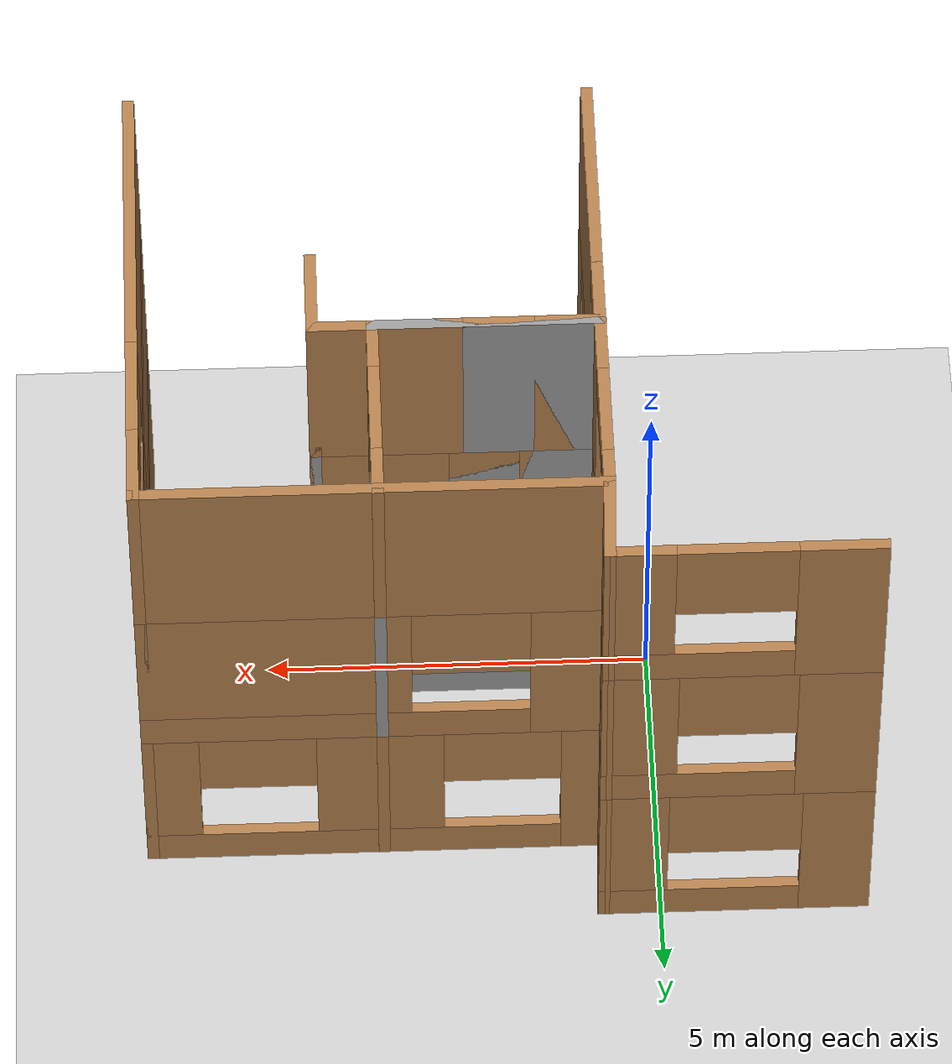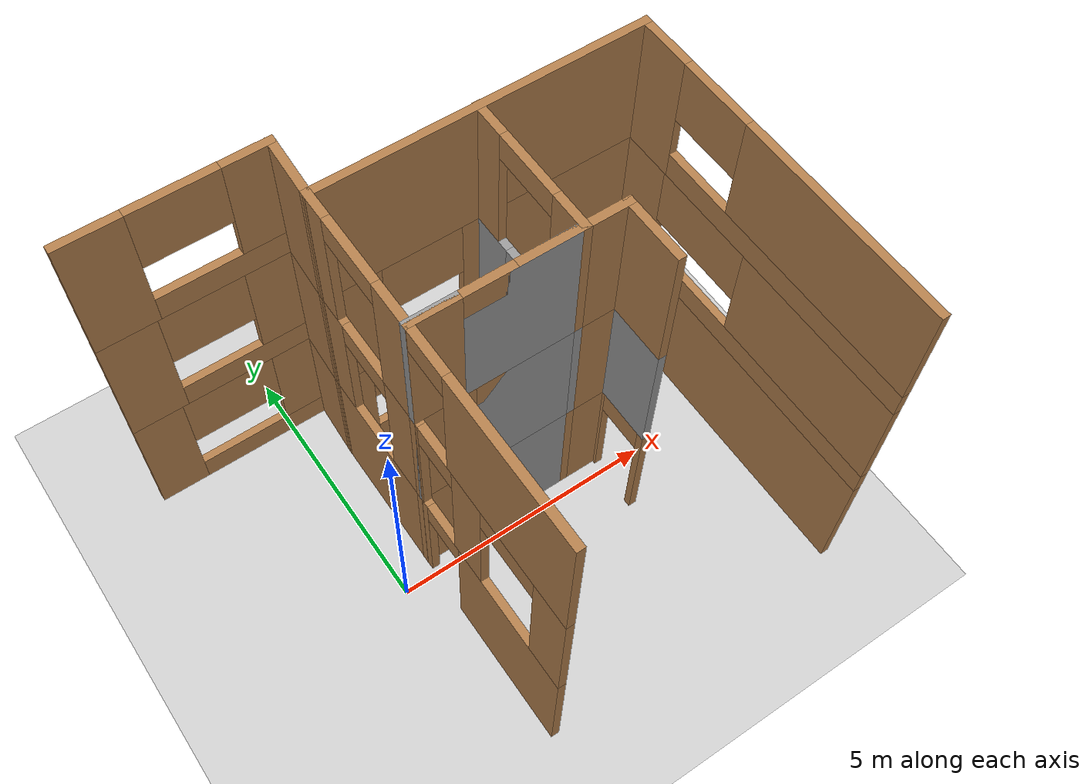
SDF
<sdf version="1.7">
 <world name="default">
  <model name="ground_plane">
   <static>1</static>
   <link name="link">
    <collision name="collision">
     <geometry><plane><normal>0 0 1</normal><size>100 100</size></plane></geometry>
     <surface>
      <contact><collide_bitmask>65535</collide_bitmask></contact>
      <friction><ode><mu>100</mu><mu2>50</mu2></ode></friction>
     </surface>
    </collision>
    <visual name="visual">
     <cast_shadows>0</cast_shadows>
     <geometry><plane><normal>0 0 1</normal><size>100 100</size></plane></geometry>
     <material>
      <script><uri>file://media/materials/scripts/gazebo.material</uri><name>Gazebo/Grey</name></script>
     </material>
    </visual>
   </link>
  </model>
  <model name="three_level_house">
   <pose>0.012851 -0.612237 0 0 -0 0</pose>
   <link name="Wall_0">
    <pose>-0.944295 4.64938 0 0 -0 0</pose>
    <visual name="Wall_0_Visual_0">
     <pose>-1.29181 0 1.25 0 -0 0</pose>
     <geometry><box><size>0.916373 0.15 2.5</size></box></geometry>
     <material>
      <script><uri>file://media/materials/scripts/gazebo.material</uri><name>Gazebo/Wood</name></script>
      <ambient>1 1 1 1</ambient>
     </material>
     <meta><layer>0</layer></meta>
    </visual>
    <collision name="Wall_0_Collision_0">
     <geometry><box><size>0.916373 0.15 2.5</size></box></geometry>
     <pose>-1.29181 0 1.25 0 -0 0</pose>
    </collision>
    <visual name="Wall_0_Visual_1">
     <pose>0.458187 0 0.25 0 -0 0</pose>
     <geometry><box><size>2.58363 0.15 0.5</size></box></geometry>
     <material>
      <script><uri>file://media/materials/scripts/gazebo.material</uri><name>Gazebo/Wood</name></script>
      <ambient>1 1 1 1</ambient>
     </material>
     <meta><layer>0</layer></meta>
    </visual>
    <collision name="Wall_0_Collision_1">
     <geometry><box><size>2.58363 0.15 0.5</size></box></geometry>
     <pose>0.458187 0 0.25 0 -0 0</pose>
    </collision>
    <visual name="Wall_0_Visual_2">
     <pose>1.30819 0 1.5 0 -0 0</pose>
     <geometry><box><size>0.883627 0.15 2</size></box></geometry>
     <material>
      <script><uri>file://media/materials/scripts/gazebo.material</uri><name>Gazebo/Wood</name></script>
      <ambient>1 1 1 1</ambient>
     </material>
     <meta><layer>0</layer></meta>
    </visual>
    <collision name="Wall_0_Collision_2">
     <geometry><box><size>0.883627 0.15 2</size></box></geometry>
     <pose>1.30819 0 1.5 0 -0 0</pose>
    </collision>
    <visual name="Wall_0_Visual_3">
     <pose>0.016373 0 1.9 0 -0 0</pose>
     <geometry><box><size>1.7 0.15 1.2</size></box></geometry>
     <material>
      <script><uri>file://media/materials/scripts/gazebo.material</uri><name>Gazebo/Wood</name></script>
      <ambient>1 1 1 1</ambient>
     </material>
     <meta><layer>0</layer></meta>
    </visual>
    <collision name="Wall_0_Collision_3">
     <geometry><box><size>1.7 0.15 1.2</size></box></geometry>
     <pose>0.016373 0 1.9 0 -0 0</pose>
    </collision>
   </link>
   <link name="Wall_1">
    <collision name="Wall_1_Collision">
     <geometry><box><size>1.25 0.15 2.5</size></box></geometry>
     <pose>0 0 1.25 0 -0 0</pose>
    </collision>
    <visual name="Wall_1_Visual">
     <pose>0 0 1.25 0 -0 0</pose>
     <geometry><box><size>1.25 0.15 2.5</size></box></geometry>
     <material>
      <script><uri>file://media/materials/scripts/gazebo.material</uri><name>Gazebo/Wood</name></script>
      <ambient>1 1 1 1</ambient>
     </material>
     <meta><layer>0</layer></meta>
    </visual>
    <pose>0.707575 4.09938 0 0 -0 -1.61283</pose>
   </link>
   <link name="Wall_10">
    <pose>0.684444 0.374383 0 0 -0 1.5708</pose>
    <visual name="Wall_10_Visual_0">
     <pose>-1.89481 0 1.25 0 -0 0</pose>
     <geometry><box><size>2.71039 0.15 2.5</size></box></geometry>
     <material>
      <script><uri>file://media/materials/scripts/gazebo.material</uri><name>Gazebo/Wood</name></script>
      <ambient>1 1 1 1</ambient>
     </material>
     <meta><layer>0</layer></meta>
    </visual>
    <collision name="Wall_10_Collision_0">
     <geometry><box><size>2.71039 0.15 2.5</size></box></geometry>
     <pose>-1.89481 0 1.25 0 -0 0</pose>
    </collision>
    <visual name="Wall_10_Visual_1">
     <pose>1.8052 0 1.25 0 -0 0</pose>
     <geometry><box><size>2.88961 0.15 2.5</size></box></geometry>
     <material>
      <script><uri>file://media/materials/scripts/gazebo.material</uri><name>Gazebo/Wood</name></script>
      <ambient>1 1 1 1</ambient>
     </material>
     <meta><layer>0</layer></meta>
    </visual>
    <collision name="Wall_10_Collision_1">
     <geometry><box><size>2.88961 0.15 2.5</size></box></geometry>
     <pose>1.8052 0 1.25 0 -0 0</pose>
    </collision>
    <visual name="Wall_10_Visual_2">
     <pose>-0.08961 0 2.25 0 -0 0</pose>
     <geometry><box><size>0.9 0.15 0.5</size></box></geometry>
     <material>
      <script><uri>file://media/materials/scripts/gazebo.material</uri><name>Gazebo/Wood</name></script>
      <ambient>1 1 1 1</ambient>
     </material>
     <meta><layer>0</layer></meta>
    </visual>
    <collision name="Wall_10_Collision_2">
     <geometry><box><size>0.9 0.15 0.5</size></box></geometry>
     <pose>-0.08961 0 2.25 0 -0 0</pose>
    </collision>
   </link>
   <link name="Wall_113">
    <pose>-0.944295 4.64938 5 0 -0 0</pose>
    <visual name="Wall_113_Visual_0">
     <pose>-1.1952 0 1.25 0 -0 0</pose>
     <geometry><box><size>1.1096 0.15 2.5</size></box></geometry>
     <material>
      <script><uri>file://media/materials/scripts/gazebo.material</uri><name>Gazebo/Wood</name></script>
      <ambient>1 1 1 1</ambient>
     </material>
     <meta><layer>2</layer></meta>
    </visual>
    <collision name="Wall_113_Collision_0">
     <geometry><box><size>1.1096 0.15 2.5</size></box></geometry>
     <pose>-1.1952 0 1.25 0 -0 0</pose>
    </collision>
    <visual name="Wall_113_Visual_1">
     <pose>0.554801 0 0.25 0 -0 0</pose>
     <geometry><box><size>2.3904 0.15 0.5</size></box></geometry>
     <material>
      <script><uri>file://media/materials/scripts/gazebo.material</uri><name>Gazebo/Wood</name></script>
      <ambient>1 1 1 1</ambient>
     </material>
     <meta><layer>2</layer></meta>
    </visual>
    <collision name="Wall_113_Collision_1">
     <geometry><box><size>2.3904 0.15 0.5</size></box></geometry>
     <pose>0.554801 0 0.25 0 -0 0</pose>
    </collision>
    <visual name="Wall_113_Visual_2">
     <pose>1.3048 0 1.5 0 -0 0</pose>
     <geometry><box><size>0.890397 0.15 2</size></box></geometry>
     <material>
      <script><uri>file://media/materials/scripts/gazebo.material</uri><name>Gazebo/Wood</name></script>
      <ambient>1 1 1 1</ambient>
     </material>
     <meta><layer>2</layer></meta>
    </visual>
    <collision name="Wall_113_Collision_2">
     <geometry><box><size>0.890397 0.15 2</size></box></geometry>
     <pose>1.3048 0 1.5 0 -0 0</pose>
    </collision>
    <visual name="Wall_113_Visual_3">
     <pose>0.109603 0 1.9 0 -0 0</pose>
     <geometry><box><size>1.5 0.15 1.2</size></box></geometry>
     <material>
      <script><uri>file://media/materials/scripts/gazebo.material</uri><name>Gazebo/Wood</name></script>
      <ambient>1 1 1 1</ambient>
     </material>
     <meta><layer>2</layer></meta>
    </visual>
    <collision name="Wall_113_Collision_3">
     <geometry><box><size>1.5 0.15 1.2</size></box></geometry>
     <pose>0.109603 0 1.9 0 -0 0</pose>
    </collision>
   </link>
   <link name="Wall_114">
    <collision name="Wall_114_Collision">
     <geometry><box><size>1.25097 0.15 2.5</size></box></geometry>
     <pose>0 0 1.25 0 -0 0</pose>
    </collision>
    <visual name="Wall_114_Visual">
     <pose>0 0 1.25 0 -0 0</pose>
     <geometry><box><size>1.25097 0.15 2.5</size></box></geometry>
     <material>
      <script><uri>file://media/materials/scripts/gazebo.material</uri><name>Gazebo/Wood</name></script>
      <ambient>1 1 1 1</ambient>
     </material>
     <meta><layer>2</layer></meta>
    </visual>
    <pose>0.707575 4.09938 5 0 -0 -1.61283</pose>
   </link>
   <link name="Wall_115">
    <collision name="Wall_115_Collision">
     <geometry><box><size>6 0.15 2.5</size></box></geometry>
     <pose>0 0 1.25 0 -0 0</pose>
    </collision>
    <visual name="Wall_115_Visual">
     <pose>0 0 1.25 0 -0 0</pose>
     <geometry><box><size>6 0.15 2.5</size></box></geometry>
     <material>
      <script><uri>file://media/materials/scripts/gazebo.material</uri><name>Gazebo/Wood</name></script>
      <ambient>1 1 1 1</ambient>
     </material>
     <meta><layer>2</layer></meta>
    </visual>
    <pose>3.60944 3.54938 5 0 -0 0</pose>
   </link>
   <link name="Wall_116">
    <pose>6.53444 0.374383 5 0 -0 -1.5708</pose>
    <visual name="Wall_116_Visual_0">
     <pose>-2.69584 0 1.25 0 -0 0</pose>
     <geometry><box><size>1.10832 0.15 2.5</size></box></geometry>
     <material>
      <script><uri>file://media/materials/scripts/gazebo.material</uri><name>Gazebo/Wood</name></script>
      <ambient>1 1 1 1</ambient>
     </material>
     <meta><layer>2</layer></meta>
    </visual>
    <collision name="Wall_116_Collision_0">
     <geometry><box><size>1.10832 0.15 2.5</size></box></geometry>
     <pose>-2.69584 0 1.25 0 -0 0</pose>
    </collision>
    <visual name="Wall_116_Visual_1">
     <pose>0.554159 0 0.25 0 -0 0</pose>
     <geometry><box><size>5.39168 0.15 0.5</size></box></geometry>
     <material>
      <script><uri>file://media/materials/scripts/gazebo.material</uri><name>Gazebo/Wood</name></script>
      <ambient>1 1 1 1</ambient>
     </material>
     <meta><layer>2</layer></meta>
    </visual>
    <collision name="Wall_116_Collision_1">
     <geometry><box><size>5.39168 0.15 0.5</size></box></geometry>
     <pose>0.554159 0 0.25 0 -0 0</pose>
    </collision>
    <visual name="Wall_116_Visual_2">
     <pose>1.25416 0 1.5 0 -0 0</pose>
     <geometry><box><size>3.99168 0.15 2</size></box></geometry>
     <material>
      <script><uri>file://media/materials/scripts/gazebo.material</uri><name>Gazebo/Wood</name></script>
      <ambient>1 1 1 1</ambient>
     </material>
     <meta><layer>2</layer></meta>
    </visual>
    <collision name="Wall_116_Collision_2">
     <geometry><box><size>3.99168 0.15 2</size></box></geometry>
     <pose>1.25416 0 1.5 0 -0 0</pose>
    </collision>
    <visual name="Wall_116_Visual_3">
     <pose>-1.44168 0 1.9 0 -0 0</pose>
     <geometry><box><size>1.4 0.15 1.2</size></box></geometry>
     <material>
      <script><uri>file://media/materials/scripts/gazebo.material</uri><name>Gazebo/Wood</name></script>
      <ambient>1 1 1 1</ambient>
     </material>
     <meta><layer>2</layer></meta>
    </visual>
    <collision name="Wall_116_Collision_3">
     <geometry><box><size>1.4 0.15 1.2</size></box></geometry>
     <pose>-1.44168 0 1.9 0 -0 0</pose>
    </collision>
   </link>
   <link name="Wall_118">
    <pose>0.684444 0.374383 5 0 -0 1.5708</pose>
    <visual name="Wall_118_Visual_0">
     <pose>-1.79676 0 1.25 0 -0 0</pose>
     <geometry><box><size>2.90647 0.15 2.5</size></box></geometry>
     <material>
      <script><uri>file://media/materials/scripts/gazebo.material</uri><name>Gazebo/Wood</name></script>
      <ambient>1 1 1 1</ambient>
     </material>
     <meta><layer>2</layer></meta>
    </visual>
    <collision name="Wall_118_Collision_0">
     <geometry><box><size>2.90647 0.15 2.5</size></box></geometry>
     <pose>-1.79676 0 1.25 0 -0 0</pose>
    </collision>
    <visual name="Wall_118_Visual_1">
     <pose>0.96834 0 1.25 0 -0 0</pose>
     <geometry><box><size>0.823741 0.15 2.5</size></box></geometry>
     <material>
      <script><uri>file://media/materials/scripts/gazebo.material</uri><name>Gazebo/Wood</name></script>
      <ambient>1 1 1 1</ambient>
     </material>
     <meta><layer>2</layer></meta>
    </visual>
    <collision name="Wall_118_Collision_1">
     <geometry><box><size>0.823741 0.15 2.5</size></box></geometry>
     <pose>0.96834 0 1.25 0 -0 0</pose>
    </collision>
    <visual name="Wall_118_Visual_2">
     <pose>2.9651 0 1.25 0 -0 0</pose>
     <geometry><box><size>0.569789 0.15 2.5</size></box></geometry>
     <material>
      <script><uri>file://media/materials/scripts/gazebo.material</uri><name>Gazebo/Wood</name></script>
      <ambient>1 1 1 1</ambient>
     </material>
     <meta><layer>2</layer></meta>
    </visual>
    <collision name="Wall_118_Collision_2">
     <geometry><box><size>0.569789 0.15 2.5</size></box></geometry>
     <pose>2.9651 0 1.25 0 -0 0</pose>
    </collision>
    <visual name="Wall_118_Visual_3">
     <pose>0.106469 0 2.25 0 -0 0</pose>
     <geometry><box><size>0.9 0.15 0.5</size></box></geometry>
     <material>
      <script><uri>file://media/materials/scripts/gazebo.material</uri><name>Gazebo/Wood</name></script>
      <ambient>1 1 1 1</ambient>
     </material>
     <meta><layer>2</layer></meta>
    </visual>
    <collision name="Wall_118_Collision_3">
     <geometry><box><size>0.9 0.15 0.5</size></box></geometry>
     <pose>0.106469 0 2.25 0 -0 0</pose>
    </collision>
    <visual name="Wall_118_Visual_4">
     <pose>2.03021 0 2.25 0 -0 0</pose>
     <geometry><box><size>1.3 0.15 0.5</size></box></geometry>
     <material>
      <script><uri>file://media/materials/scripts/gazebo.material</uri><name>Gazebo/Wood</name></script>
      <ambient>1 1 1 1</ambient>
     </material>
     <meta><layer>2</layer></meta>
    </visual>
    <collision name="Wall_118_Collision_4">
     <geometry><box><size>1.3 0.15 0.5</size></box></geometry>
     <pose>2.03021 0 2.25 0 -0 0</pose>
    </collision>
   </link>
   <link name="Wall_131">
    <pose>3.53098 2.25753 5 0 -0 -1.5708</pose>
    <visual name="Wall_131_Visual_0">
     <pose>-1.01915 0 1.25 0 -0 0</pose>
     <geometry><box><size>0.711698 0.15 2.5</size></box></geometry>
     <material>
      <script><uri>file://media/materials/scripts/gazebo.material</uri><name>Gazebo/Wood</name></script>
      <ambient>1 1 1 1</ambient>
     </material>
     <meta><layer>2</layer></meta>
    </visual>
    <collision name="Wall_131_Collision_0">
     <geometry><box><size>0.711698 0.15 2.5</size></box></geometry>
     <pose>-1.01915 0 1.25 0 -0 0</pose>
    </collision>
    <visual name="Wall_131_Visual_1">
     <pose>1.00585 0 1.25 0 -0 0</pose>
     <geometry><box><size>0.738302 0.15 2.5</size></box></geometry>
     <material>
      <script><uri>file://media/materials/scripts/gazebo.material</uri><name>Gazebo/Wood</name></script>
      <ambient>1 1 1 1</ambient>
     </material>
     <meta><layer>2</layer></meta>
    </visual>
    <collision name="Wall_131_Collision_1">
     <geometry><box><size>0.738302 0.15 2.5</size></box></geometry>
     <pose>1.00585 0 1.25 0 -0 0</pose>
    </collision>
    <visual name="Wall_131_Visual_2">
     <pose>-0.013302 0 2.25 0 -0 0</pose>
     <geometry><box><size>1.3 0.15 0.5</size></box></geometry>
     <material>
      <script><uri>file://media/materials/scripts/gazebo.material</uri><name>Gazebo/Wood</name></script>
      <ambient>1 1 1 1</ambient>
     </material>
     <meta><layer>2</layer></meta>
    </visual>
    <collision name="Wall_131_Collision_2">
     <geometry><box><size>1.3 0.15 0.5</size></box></geometry>
     <pose>-0.013302 0 2.25 0 -0 0</pose>
    </collision>
   </link>
   <link name="Wall_132">
    <collision name="Wall_132_Collision">
     <geometry><box><size>3 0.15 2.5</size></box></geometry>
     <pose>0 0 1.25 0 -0 0</pose>
    </collision>
    <visual name="Wall_132_Visual">
     <pose>0 0 1.25 0 -0 0</pose>
     <geometry><box><size>3 0.15 2.5</size></box></geometry>
     <material>
      <script><uri>file://media/materials/scripts/gazebo.material</uri><name>Gazebo/Grey</name></script>
      <ambient>1 1 1 1</ambient>
     </material>
     <meta><layer>2</layer></meta>
    </visual>
    <pose>2.10598 0.957535 5 0 -0 3.14159</pose>
   </link>
   <link name="Wall_133">
    <pose>2.48098 0.957535 5 0 -0 0</pose>
    <visual name="Wall_133_Visual_0">
     <pose>-1.42731 0 1.25 0 -0 0</pose>
     <geometry><box><size>0.895371 0.15 2.5</size></box></geometry>
     <material>
      <script><uri>file://media/materials/scripts/gazebo.material</uri><name>Gazebo/Wood</name></script>
      <ambient>1 1 1 1</ambient>
     </material>
     <meta><layer>2</layer></meta>
    </visual>
    <collision name="Wall_133_Collision_0">
     <geometry><box><size>0.895371 0.15 2.5</size></box></geometry>
     <pose>-1.42731 0 1.25 0 -0 0</pose>
    </collision>
    <visual name="Wall_133_Visual_1">
     <pose>0.897686 0 1.25 0 -0 0</pose>
     <geometry><box><size>1.95463 0.15 2.5</size></box></geometry>
     <material>
      <script><uri>file://media/materials/scripts/gazebo.material</uri><name>Gazebo/Wood</name></script>
      <ambient>1 1 1 1</ambient>
     </material>
     <meta><layer>2</layer></meta>
    </visual>
    <collision name="Wall_133_Collision_1">
     <geometry><box><size>1.95463 0.15 2.5</size></box></geometry>
     <pose>0.897686 0 1.25 0 -0 0</pose>
    </collision>
    <visual name="Wall_133_Visual_2">
     <pose>-0.529629 0 2.25 0 -0 0</pose>
     <geometry><box><size>0.9 0.15 0.5</size></box></geometry>
     <material>
      <script><uri>file://media/materials/scripts/gazebo.material</uri><name>Gazebo/Wood</name></script>
      <ambient>1 1 1 1</ambient>
     </material>
     <meta><layer>2</layer></meta>
    </visual>
    <collision name="Wall_133_Collision_2">
     <geometry><box><size>0.9 0.15 0.5</size></box></geometry>
     <pose>-0.529629 0 2.25 0 -0 0</pose>
    </collision>
   </link>
   <link name="Wall_134">
    <collision name="Wall_134_Collision">
     <geometry><box><size>1.25 0.15 2.5</size></box></geometry>
     <pose>0 0 1.25 0 -0 0</pose>
    </collision>
    <visual name="Wall_134_Visual">
     <pose>0 0 1.25 0 -0 0</pose>
     <geometry><box><size>1.25 0.15 2.5</size></box></geometry>
     <material>
      <script><uri>file://media/materials/scripts/gazebo.material</uri><name>Gazebo/Wood</name></script>
      <ambient>1 1 1 1</ambient>
     </material>
     <meta><layer>2</layer></meta>
    </visual>
    <pose>4.28098 0.407535 5 0 -0 -1.5708</pose>
   </link>
   <link name="Wall_29">
    <collision name="Wall_29_Collision">
     <geometry><box><size>2.75 0.15 2.5</size></box></geometry>
     <pose>0 0 1.25 0 -0 0</pose>
    </collision>
    <visual name="Wall_29_Visual">
     <pose>0 0 1.25 0 -0 0</pose>
     <geometry><box><size>2.75 0.15 2.5</size></box></geometry>
     <material>
      <script><uri>file://media/materials/scripts/gazebo.material</uri><name>Gazebo/Wood</name></script>
      <ambient>1 1 1 1</ambient>
     </material>
     <meta><layer>0</layer></meta>
    </visual>
    <pose>3.53098 2.25753 0 0 -0 -1.5708</pose>
   </link>
   <link name="Wall_30">
    <collision name="Wall_30_Collision">
     <geometry><box><size>3 0.15 2.5</size></box></geometry>
     <pose>0 0 1.25 0 -0 0</pose>
    </collision>
    <visual name="Wall_30_Visual">
     <pose>0 0 1.25 0 -0 0</pose>
     <geometry><box><size>3 0.15 2.5</size></box></geometry>
     <material>
      <script><uri>file://media/materials/scripts/gazebo.material</uri><name>Gazebo/Grey</name></script>
      <ambient>1 1 1 1</ambient>
     </material>
     <meta><layer>0</layer></meta>
    </visual>
    <pose>2.10598 0.957535 0 0 -0 3.14159</pose>
   </link>
   <link name="Wall_31">
    <pose>2.48098 0.957535 0 0 -0 0</pose>
    <visual name="Wall_31_Visual_0">
     <pose>-1.50124 0 1.25 0 -0 0</pose>
     <geometry><box><size>0.747524 0.15 2.5</size></box></geometry>
     <material>
      <script><uri>file://media/materials/scripts/gazebo.material</uri><name>Gazebo/Wood</name></script>
      <ambient>1 1 1 1</ambient>
     </material>
     <meta><layer>0</layer></meta>
    </visual>
    <collision name="Wall_31_Collision_0">
     <geometry><box><size>0.747524 0.15 2.5</size></box></geometry>
     <pose>-1.50124 0 1.25 0 -0 0</pose>
    </collision>
    <visual name="Wall_31_Visual_1">
     <pose>1.12376 0 1.25 0 -0 0</pose>
     <geometry><box><size>1.50248 0.15 2.5</size></box></geometry>
     <material>
      <script><uri>file://media/materials/scripts/gazebo.material</uri><name>Gazebo/Wood</name></script>
      <ambient>1 1 1 1</ambient>
     </material>
     <meta><layer>0</layer></meta>
    </visual>
    <collision name="Wall_31_Collision_1">
     <geometry><box><size>1.50248 0.15 2.5</size></box></geometry>
     <pose>1.12376 0 1.25 0 -0 0</pose>
    </collision>
    <visual name="Wall_31_Visual_2">
     <pose>-0.377476 0 2.25 0 -0 0</pose>
     <geometry><box><size>1.5 0.15 0.5</size></box></geometry>
     <material>
      <script><uri>file://media/materials/scripts/gazebo.material</uri><name>Gazebo/Wood</name></script>
      <ambient>1 1 1 1</ambient>
     </material>
     <meta><layer>0</layer></meta>
    </visual>
    <collision name="Wall_31_Collision_2">
     <geometry><box><size>1.5 0.15 0.5</size></box></geometry>
     <pose>-0.377476 0 2.25 0 -0 0</pose>
    </collision>
   </link>
   <link name="Wall_32">
    <pose>4.28098 0.407535 0 0 -0 -1.5708</pose>
    <visual name="Wall_32_Visual_0">
     <pose>-0.519844 0 1.25 0 -0 0</pose>
     <geometry><box><size>0.210312 0.15 2.5</size></box></geometry>
     <material>
      <script><uri>file://media/materials/scripts/gazebo.material</uri><name>Gazebo/Wood</name></script>
      <ambient>1 1 1 1</ambient>
     </material>
     <meta><layer>0</layer></meta>
    </visual>
    <collision name="Wall_32_Collision_0">
     <geometry><box><size>0.210312 0.15 2.5</size></box></geometry>
     <pose>-0.519844 0 1.25 0 -0 0</pose>
    </collision>
    <visual name="Wall_32_Visual_1">
     <pose>0.555156 0 1.25 0 -0 0</pose>
     <geometry><box><size>0.139688 0.15 2.5</size></box></geometry>
     <material>
      <script><uri>file://media/materials/scripts/gazebo.material</uri><name>Gazebo/Wood</name></script>
      <ambient>1 1 1 1</ambient>
     </material>
     <meta><layer>0</layer></meta>
    </visual>
    <collision name="Wall_32_Collision_1">
     <geometry><box><size>0.139688 0.15 2.5</size></box></geometry>
     <pose>0.555156 0 1.25 0 -0 0</pose>
    </collision>
    <visual name="Wall_32_Visual_2">
     <pose>0.035312 0 2.25 0 -0 0</pose>
     <geometry><box><size>0.9 0.15 0.5</size></box></geometry>
     <material>
      <script><uri>file://media/materials/scripts/gazebo.material</uri><name>Gazebo/Wood</name></script>
      <ambient>1 1 1 1</ambient>
     </material>
     <meta><layer>0</layer></meta>
    </visual>
    <collision name="Wall_32_Collision_2">
     <geometry><box><size>0.9 0.15 0.5</size></box></geometry>
     <pose>0.035312 0 2.25 0 -0 0</pose>
    </collision>
   </link>
   <link name="Wall_63">
    <pose>-0.944295 4.64938 2.5 0 -0 0</pose>
    <visual name="Wall_63_Visual_0">
     <pose>-1.23174 0 1.25 0 -0 0</pose>
     <geometry><box><size>1.03653 0.15 2.5</size></box></geometry>
     <material>
      <script><uri>file://media/materials/scripts/gazebo.material</uri><name>Gazebo/Wood</name></script>
      <ambient>1 1 1 1</ambient>
     </material>
     <meta><layer>1</layer></meta>
    </visual>
    <collision name="Wall_63_Collision_0">
     <geometry><box><size>1.03653 0.15 2.5</size></box></geometry>
     <pose>-1.23174 0 1.25 0 -0 0</pose>
    </collision>
    <visual name="Wall_63_Visual_1">
     <pose>0.518263 0 0.25 0 -0 0</pose>
     <geometry><box><size>2.46347 0.15 0.5</size></box></geometry>
     <material>
      <script><uri>file://media/materials/scripts/gazebo.material</uri><name>Gazebo/Wood</name></script>
      <ambient>1 1 1 1</ambient>
     </material>
     <meta><layer>1</layer></meta>
    </visual>
    <collision name="Wall_63_Collision_1">
     <geometry><box><size>2.46347 0.15 0.5</size></box></geometry>
     <pose>0.518263 0 0.25 0 -0 0</pose>
    </collision>
    <visual name="Wall_63_Visual_2">
     <pose>1.26826 0 1.5 0 -0 0</pose>
     <geometry><box><size>0.963474 0.15 2</size></box></geometry>
     <material>
      <script><uri>file://media/materials/scripts/gazebo.material</uri><name>Gazebo/Wood</name></script>
      <ambient>1 1 1 1</ambient>
     </material>
     <meta><layer>1</layer></meta>
    </visual>
    <collision name="Wall_63_Collision_2">
     <geometry><box><size>0.963474 0.15 2</size></box></geometry>
     <pose>1.26826 0 1.5 0 -0 0</pose>
    </collision>
    <visual name="Wall_63_Visual_3">
     <pose>0.036526 0 1.9 0 -0 0</pose>
     <geometry><box><size>1.5 0.15 1.2</size></box></geometry>
     <material>
      <script><uri>file://media/materials/scripts/gazebo.material</uri><name>Gazebo/Wood</name></script>
      <ambient>1 1 1 1</ambient>
     </material>
     <meta><layer>1</layer></meta>
    </visual>
    <collision name="Wall_63_Collision_3">
     <geometry><box><size>1.5 0.15 1.2</size></box></geometry>
     <pose>0.036526 0 1.9 0 -0 0</pose>
    </collision>
   </link>
   <link name="Wall_64">
    <collision name="Wall_64_Collision">
     <geometry><box><size>1.25097 0.15 2.5</size></box></geometry>
     <pose>0 0 1.25 0 -0 0</pose>
    </collision>
    <visual name="Wall_64_Visual">
     <pose>0 0 1.25 0 -0 0</pose>
     <geometry><box><size>1.25097 0.15 2.5</size></box></geometry>
     <material>
      <script><uri>file://media/materials/scripts/gazebo.material</uri><name>Gazebo/Wood</name></script>
      <ambient>1 1 1 1</ambient>
     </material>
     <meta><layer>1</layer></meta>
    </visual>
    <pose>0.707575 4.09938 2.5 0 -0 -1.61283</pose>
   </link>
   <link name="Wall_65">
    <pose>3.60944 3.54938 2.5 0 -0 0</pose>
    <visual name="Wall_65_Visual_0">
     <pose>-2.4819 0 1.25 0 -0 0</pose>
     <geometry><box><size>1.0362 0.15 2.5</size></box></geometry>
     <material>
      <script><uri>file://media/materials/scripts/gazebo.material</uri><name>Gazebo/Wood</name></script>
      <ambient>1 1 1 1</ambient>
     </material>
     <meta><layer>1</layer></meta>
    </visual>
    <collision name="Wall_65_Collision_0">
     <geometry><box><size>1.0362 0.15 2.5</size></box></geometry>
     <pose>-2.4819 0 1.25 0 -0 0</pose>
    </collision>
    <visual name="Wall_65_Visual_1">
     <pose>0.518099 0 0.25 0 -0 0</pose>
     <geometry><box><size>4.9638 0.15 0.5</size></box></geometry>
     <material>
      <script><uri>file://media/materials/scripts/gazebo.material</uri><name>Gazebo/Wood</name></script>
      <ambient>1 1 1 1</ambient>
     </material>
     <meta><layer>1</layer></meta>
    </visual>
    <collision name="Wall_65_Collision_1">
     <geometry><box><size>4.9638 0.15 0.5</size></box></geometry>
     <pose>0.518099 0 0.25 0 -0 0</pose>
    </collision>
    <visual name="Wall_65_Visual_2">
     <pose>1.2681 0 1.5 0 -0 0</pose>
     <geometry><box><size>3.4638 0.15 2</size></box></geometry>
     <material>
      <script><uri>file://media/materials/scripts/gazebo.material</uri><name>Gazebo/Wood</name></script>
      <ambient>1 1 1 1</ambient>
     </material>
     <meta><layer>1</layer></meta>
    </visual>
    <collision name="Wall_65_Collision_2">
     <geometry><box><size>3.4638 0.15 2</size></box></geometry>
     <pose>1.2681 0 1.5 0 -0 0</pose>
    </collision>
    <visual name="Wall_65_Visual_3">
     <pose>-1.2138 0 1.9 0 -0 0</pose>
     <geometry><box><size>1.5 0.15 1.2</size></box></geometry>
     <material>
      <script><uri>file://media/materials/scripts/gazebo.material</uri><name>Gazebo/Wood</name></script>
      <ambient>1 1 1 1</ambient>
     </material>
     <meta><layer>1</layer></meta>
    </visual>
    <collision name="Wall_65_Collision_3">
     <geometry><box><size>1.5 0.15 1.2</size></box></geometry>
     <pose>-1.2138 0 1.9 0 -0 0</pose>
    </collision>
   </link>
   <link name="Wall_66">
    <pose>6.53444 0.374383 2.5 0 -0 -1.5708</pose>
    <visual name="Wall_66_Visual_0">
     <pose>-2.71381 0 1.25 0 -0 0</pose>
     <geometry><box><size>1.07237 0.15 2.5</size></box></geometry>
     <material>
      <script><uri>file://media/materials/scripts/gazebo.material</uri><name>Gazebo/Wood</name></script>
      <ambient>1 1 1 1</ambient>
     </material>
     <meta><layer>1</layer></meta>
    </visual>
    <collision name="Wall_66_Collision_0">
     <geometry><box><size>1.07237 0.15 2.5</size></box></geometry>
     <pose>-2.71381 0 1.25 0 -0 0</pose>
    </collision>
    <visual name="Wall_66_Visual_1">
     <pose>0.536185 0 0.25 0 -0 0</pose>
     <geometry><box><size>5.42763 0.15 0.5</size></box></geometry>
     <material>
      <script><uri>file://media/materials/scripts/gazebo.material</uri><name>Gazebo/Wood</name></script>
      <ambient>1 1 1 1</ambient>
     </material>
     <meta><layer>1</layer></meta>
    </visual>
    <collision name="Wall_66_Collision_1">
     <geometry><box><size>5.42763 0.15 0.5</size></box></geometry>
     <pose>0.536185 0 0.25 0 -0 0</pose>
    </collision>
    <visual name="Wall_66_Visual_2">
     <pose>1.53618 0 1.5 0 -0 0</pose>
     <geometry><box><size>3.42763 0.15 2</size></box></geometry>
     <material>
      <script><uri>file://media/materials/scripts/gazebo.material</uri><name>Gazebo/Wood</name></script>
      <ambient>1 1 1 1</ambient>
     </material>
     <meta><layer>1</layer></meta>
    </visual>
    <collision name="Wall_66_Collision_2">
     <geometry><box><size>3.42763 0.15 2</size></box></geometry>
     <pose>1.53618 0 1.5 0 -0 0</pose>
    </collision>
    <visual name="Wall_66_Visual_3">
     <pose>-1.17763 0 1.9 0 -0 0</pose>
     <geometry><box><size>2 0.15 1.2</size></box></geometry>
     <material>
      <script><uri>file://media/materials/scripts/gazebo.material</uri><name>Gazebo/Wood</name></script>
      <ambient>1 1 1 1</ambient>
     </material>
     <meta><layer>1</layer></meta>
    </visual>
    <collision name="Wall_66_Collision_3">
     <geometry><box><size>2 0.15 1.2</size></box></geometry>
     <pose>-1.17763 0 1.9 0 -0 0</pose>
    </collision>
   </link>
   <link name="Wall_68">
    <pose>0.684444 0.374383 2.5 0 -0 1.5708</pose>
    <visual name="Wall_68_Visual_0">
     <pose>-2.86815 0 1.25 0 -0 0</pose>
     <geometry><box><size>0.76369 0.15 2.5</size></box></geometry>
     <material>
      <script><uri>file://media/materials/scripts/gazebo.material</uri><name>Gazebo/Wood</name></script>
      <ambient>1 1 1 1</ambient>
     </material>
     <meta><layer>1</layer></meta>
    </visual>
    <collision name="Wall_68_Collision_0">
     <geometry><box><size>0.76369 0.15 2.5</size></box></geometry>
     <pose>-2.86815 0 1.25 0 -0 0</pose>
    </collision>
    <visual name="Wall_68_Visual_1">
     <pose>-0.815946 0 1.25 0 -0 0</pose>
     <geometry><box><size>0.740729 0.15 2.5</size></box></geometry>
     <material>
      <script><uri>file://media/materials/scripts/gazebo.material</uri><name>Gazebo/Wood</name></script>
      <ambient>1 1 1 1</ambient>
     </material>
     <meta><layer>1</layer></meta>
    </visual>
    <collision name="Wall_68_Collision_1">
     <geometry><box><size>0.740729 0.15 2.5</size></box></geometry>
     <pose>-0.815946 0 1.25 0 -0 0</pose>
    </collision>
    <visual name="Wall_68_Visual_2">
     <pose>0.910466 0 1.25 0 -0 0</pose>
     <geometry><box><size>0.912095 0.15 2.5</size></box></geometry>
     <material>
      <script><uri>file://media/materials/scripts/gazebo.material</uri><name>Gazebo/Wood</name></script>
      <ambient>1 1 1 1</ambient>
     </material>
     <meta><layer>1</layer></meta>
    </visual>
    <collision name="Wall_68_Collision_2">
     <geometry><box><size>0.912095 0.15 2.5</size></box></geometry>
     <pose>0.910466 0 1.25 0 -0 0</pose>
    </collision>
    <visual name="Wall_68_Visual_3">
     <pose>2.90826 0 1.25 0 -0 0</pose>
     <geometry><box><size>0.683486 0.15 2.5</size></box></geometry>
     <material>
      <script><uri>file://media/materials/scripts/gazebo.material</uri><name>Gazebo/Wood</name></script>
      <ambient>1 1 1 1</ambient>
     </material>
     <meta><layer>1</layer></meta>
    </visual>
    <collision name="Wall_68_Collision_3">
     <geometry><box><size>0.683486 0.15 2.5</size></box></geometry>
     <pose>2.90826 0 1.25 0 -0 0</pose>
    </collision>
    <visual name="Wall_68_Visual_4">
     <pose>-1.83631 0 2.25 0 -0 0</pose>
     <geometry><box><size>1.3 0.15 0.5</size></box></geometry>
     <material>
      <script><uri>file://media/materials/scripts/gazebo.material</uri><name>Gazebo/Wood</name></script>
      <ambient>1 1 1 1</ambient>
     </material>
     <meta><layer>1</layer></meta>
    </visual>
    <collision name="Wall_68_Collision_4">
     <geometry><box><size>1.3 0.15 0.5</size></box></geometry>
     <pose>-1.83631 0 2.25 0 -0 0</pose>
    </collision>
    <visual name="Wall_68_Visual_5">
     <pose>0.004418 0 2.25 0 -0 0</pose>
     <geometry><box><size>0.9 0.15 0.5</size></box></geometry>
     <material>
      <script><uri>file://media/materials/scripts/gazebo.material</uri><name>Gazebo/Wood</name></script>
      <ambient>1 1 1 1</ambient>
     </material>
     <meta><layer>1</layer></meta>
    </visual>
    <collision name="Wall_68_Collision_5">
     <geometry><box><size>0.9 0.15 0.5</size></box></geometry>
     <pose>0.004418 0 2.25 0 -0 0</pose>
    </collision>
    <visual name="Wall_68_Visual_6">
     <pose>1.96651 0 2.25 0 -0 0</pose>
     <geometry><box><size>1.2 0.15 0.5</size></box></geometry>
     <material>
      <script><uri>file://media/materials/scripts/gazebo.material</uri><name>Gazebo/Wood</name></script>
      <ambient>1 1 1 1</ambient>
     </material>
     <meta><layer>1</layer></meta>
    </visual>
    <collision name="Wall_68_Collision_6">
     <geometry><box><size>1.2 0.15 0.5</size></box></geometry>
     <pose>1.96651 0 2.25 0 -0 0</pose>
    </collision>
   </link>
   <link name="Wall_7">
    <pose>3.60944 3.54938 0 0 -0 0</pose>
    <visual name="Wall_7_Visual_0">
     <pose>-2.68044 0 1.25 0 -0 0</pose>
     <geometry><box><size>0.639118 0.15 2.5</size></box></geometry>
     <material>
      <script><uri>file://media/materials/scripts/gazebo.material</uri><name>Gazebo/Wood</name></script>
      <ambient>1 1 1 1</ambient>
     </material>
     <meta><layer>0</layer></meta>
    </visual>
    <collision name="Wall_7_Collision_0">
     <geometry><box><size>0.639118 0.15 2.5</size></box></geometry>
     <pose>-2.68044 0 1.25 0 -0 0</pose>
    </collision>
    <visual name="Wall_7_Visual_1">
     <pose>0.319559 0 0.25 0 -0 0</pose>
     <geometry><box><size>5.36088 0.15 0.5</size></box></geometry>
     <material>
      <script><uri>file://media/materials/scripts/gazebo.material</uri><name>Gazebo/Wood</name></script>
      <ambient>1 1 1 1</ambient>
     </material>
     <meta><layer>0</layer></meta>
    </visual>
    <collision name="Wall_7_Collision_1">
     <geometry><box><size>5.36088 0.15 0.5</size></box></geometry>
     <pose>0.319559 0 0.25 0 -0 0</pose>
    </collision>
    <visual name="Wall_7_Visual_2">
     <pose>-0.045521 0 1.5 0 -0 0</pose>
     <geometry><box><size>1.63072 0.15 2</size></box></geometry>
     <material>
      <script><uri>file://media/materials/scripts/gazebo.material</uri><name>Gazebo/Wood</name></script>
      <ambient>1 1 1 1</ambient>
     </material>
     <meta><layer>0</layer></meta>
    </visual>
    <collision name="Wall_7_Collision_2">
     <geometry><box><size>1.63072 0.15 2</size></box></geometry>
     <pose>-0.045521 0 1.5 0 -0 0</pose>
    </collision>
    <visual name="Wall_7_Visual_3">
     <pose>2.63492 0 1.5 0 -0 0</pose>
     <geometry><box><size>0.73016 0.15 2</size></box></geometry>
     <material>
      <script><uri>file://media/materials/scripts/gazebo.material</uri><name>Gazebo/Wood</name></script>
      <ambient>1 1 1 1</ambient>
     </material>
     <meta><layer>0</layer></meta>
    </visual>
    <collision name="Wall_7_Collision_3">
     <geometry><box><size>0.73016 0.15 2</size></box></geometry>
     <pose>2.63492 0 1.5 0 -0 0</pose>
    </collision>
    <visual name="Wall_7_Visual_4">
     <pose>-1.61088 0 2 0 -0 0</pose>
     <geometry><box><size>1.5 0.15 1</size></box></geometry>
     <material>
      <script><uri>file://media/materials/scripts/gazebo.material</uri><name>Gazebo/Wood</name></script>
      <ambient>1 1 1 1</ambient>
     </material>
     <meta><layer>0</layer></meta>
    </visual>
    <collision name="Wall_7_Collision_4">
     <geometry><box><size>1.5 0.15 1</size></box></geometry>
     <pose>-1.61088 0 2 0 -0 0</pose>
    </collision>
    <visual name="Wall_7_Visual_5">
     <pose>1.51984 0 2 0 -0 0</pose>
     <geometry><box><size>1.5 0.15 1</size></box></geometry>
     <material>
      <script><uri>file://media/materials/scripts/gazebo.material</uri><name>Gazebo/Wood</name></script>
      <ambient>1 1 1 1</ambient>
     </material>
     <meta><layer>0</layer></meta>
    </visual>
    <collision name="Wall_7_Collision_5">
     <geometry><box><size>1.5 0.15 1</size></box></geometry>
     <pose>1.51984 0 2 0 -0 0</pose>
    </collision>
   </link>
   <link name="Wall_8">
    <collision name="Wall_8_Collision">
     <geometry><box><size>6.5 0.15 2.5</size></box></geometry>
     <pose>0 0 1.25 0 -0 0</pose>
    </collision>
    <visual name="Wall_8_Visual">
     <pose>0 0 1.25 0 -0 0</pose>
     <geometry><box><size>6.5 0.15 2.5</size></box></geometry>
     <material>
      <script><uri>file://media/materials/scripts/gazebo.material</uri><name>Gazebo/Wood</name></script>
      <ambient>1 1 1 1</ambient>
     </material>
     <meta><layer>0</layer></meta>
    </visual>
    <pose>6.53444 0.374383 0 0 -0 -1.5708</pose>
   </link>
   <link name="Wall_81">
    <pose>3.53098 2.25753 2.5 0 -0 -1.5708</pose>
    <visual name="Wall_81_Visual_0">
     <pose>-0.913725 0 1.25 0 -0 0</pose>
     <geometry><box><size>0.92255 0.15 2.5</size></box></geometry>
     <material>
      <script><uri>file://media/materials/scripts/gazebo.material</uri><name>Gazebo/Grey</name></script>
      <ambient>1 1 1 1</ambient>
     </material>
     <meta><layer>1</layer></meta>
    </visual>
    <collision name="Wall_81_Collision_0">
     <geometry><box><size>0.92255 0.15 2.5</size></box></geometry>
     <pose>-0.913725 0 1.25 0 -0 0</pose>
    </collision>
    <visual name="Wall_81_Visual_1">
     <pose>0.911275 0 1.25 0 -0 0</pose>
     <geometry><box><size>0.92745 0.15 2.5</size></box></geometry>
     <material>
      <script><uri>file://media/materials/scripts/gazebo.material</uri><name>Gazebo/Grey</name></script>
      <ambient>1 1 1 1</ambient>
     </material>
     <meta><layer>1</layer></meta>
    </visual>
    <collision name="Wall_81_Collision_1">
     <geometry><box><size>0.92745 0.15 2.5</size></box></geometry>
     <pose>0.911275 0 1.25 0 -0 0</pose>
    </collision>
    <visual name="Wall_81_Visual_2">
     <pose>-0.00245 0 2.25 0 -0 0</pose>
     <geometry><box><size>0.9 0.15 0.5</size></box></geometry>
     <material>
      <script><uri>file://media/materials/scripts/gazebo.material</uri><name>Gazebo/Grey</name></script>
      <ambient>1 1 1 1</ambient>
     </material>
     <meta><layer>1</layer></meta>
    </visual>
    <collision name="Wall_81_Collision_2">
     <geometry><box><size>0.9 0.15 0.5</size></box></geometry>
     <pose>-0.00245 0 2.25 0 -0 0</pose>
    </collision>
   </link>
   <link name="Wall_82">
    <collision name="Wall_82_Collision">
     <geometry><box><size>3 0.15 2.5</size></box></geometry>
     <pose>0 0 1.25 0 -0 0</pose>
    </collision>
    <visual name="Wall_82_Visual">
     <pose>0 0 1.25 0 -0 0</pose>
     <geometry><box><size>3 0.15 2.5</size></box></geometry>
     <material>
      <script><uri>file://media/materials/scripts/gazebo.material</uri><name>Gazebo/Grey</name></script>
      <ambient>1 1 1 1</ambient>
     </material>
     <meta><layer>1</layer></meta>
    </visual>
    <pose>2.10598 0.957535 2.5 0 -0 3.14159</pose>
   </link>
   <link name="Wall_83">
    <pose>2.48098 0.957535 2.5 0 -0 0</pose>
    <visual name="Wall_83_Visual_0">
     <pose>-1.33665 0 1.25 0 -0 0</pose>
     <geometry><box><size>1.0767 0.15 2.5</size></box></geometry>
     <material>
      <script><uri>file://media/materials/scripts/gazebo.material</uri><name>Gazebo/Wood</name></script>
      <ambient>1 1 1 1</ambient>
     </material>
     <meta><layer>1</layer></meta>
    </visual>
    <collision name="Wall_83_Collision_0">
     <geometry><box><size>1.0767 0.15 2.5</size></box></geometry>
     <pose>-1.33665 0 1.25 0 -0 0</pose>
    </collision>
    <visual name="Wall_83_Visual_1">
     <pose>0.988351 0 1.25 0 -0 0</pose>
     <geometry><box><size>1.7733 0.15 2.5</size></box></geometry>
     <material>
      <script><uri>file://media/materials/scripts/gazebo.material</uri><name>Gazebo/Wood</name></script>
      <ambient>1 1 1 1</ambient>
     </material>
     <meta><layer>1</layer></meta>
    </visual>
    <collision name="Wall_83_Collision_1">
     <geometry><box><size>1.7733 0.15 2.5</size></box></geometry>
     <pose>0.988351 0 1.25 0 -0 0</pose>
    </collision>
    <visual name="Wall_83_Visual_2">
     <pose>-0.348298 0 2.25 0 -0 0</pose>
     <geometry><box><size>0.9 0.15 0.5</size></box></geometry>
     <material>
      <script><uri>file://media/materials/scripts/gazebo.material</uri><name>Gazebo/Wood</name></script>
      <ambient>1 1 1 1</ambient>
     </material>
     <meta><layer>1</layer></meta>
    </visual>
    <collision name="Wall_83_Collision_2">
     <geometry><box><size>0.9 0.15 0.5</size></box></geometry>
     <pose>-0.348298 0 2.25 0 -0 0</pose>
    </collision>
   </link>
   <link name="Wall_84">
    <collision name="Wall_84_Collision">
     <geometry><box><size>1.25 0.15 2.5</size></box></geometry>
     <pose>0 0 1.25 0 -0 0</pose>
    </collision>
    <visual name="Wall_84_Visual">
     <pose>0 0 1.25 0 -0 0</pose>
     <geometry><box><size>1.25 0.15 2.5</size></box></geometry>
     <material>
      <script><uri>file://media/materials/scripts/gazebo.material</uri><name>Gazebo/Grey</name></script>
      <ambient>1 1 1 1</ambient>
     </material>
     <meta><layer>1</layer></meta>
    </visual>
    <pose>4.28098 0.407535 2.5 0 -0 -1.5708</pose>
   </link>
   <static>1</static>
  </model>
 </world>
</sdf>
